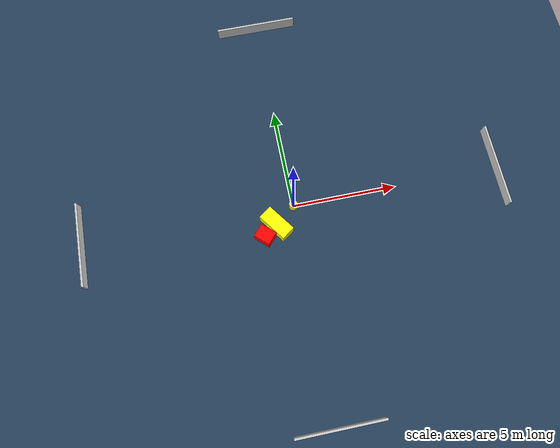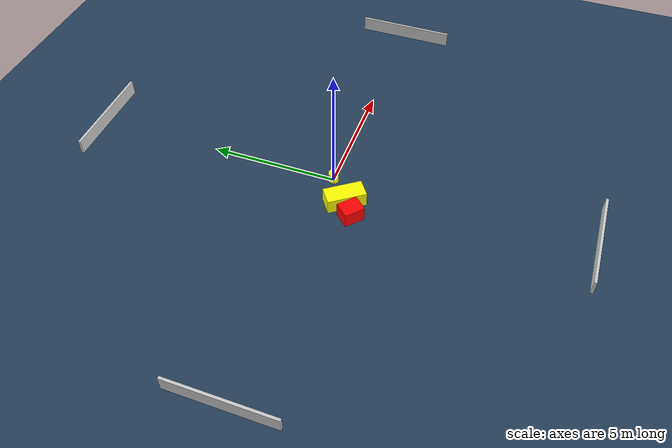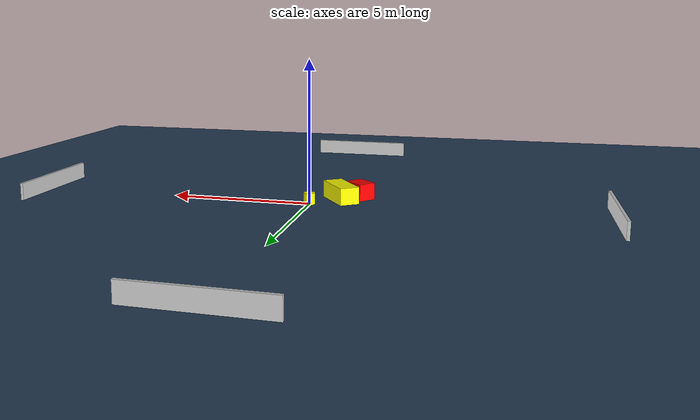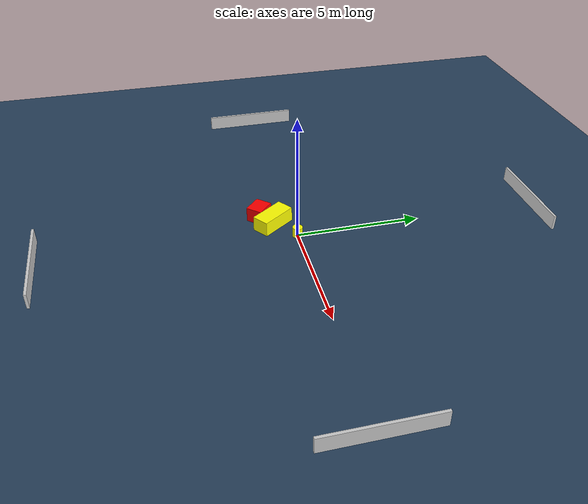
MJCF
<?xml version="1.0" ?>
<mujoco model="generated_environment">
  <option timestep="0.01" integrator="RK4" cone="elliptic"/>
  <default>
    <geom density="1"/>
  </default>
  <asset>
    <texture builtin="gradient" height="3072" name="skybox" rgb1="0.3 0.5 0.7" rgb2="0 0 0" type="skybox" width="512"/>
    <texture builtin="checker" height="300" name="groundplane" rgb1="0.2 0.3 0.4" rgb2="0.1 0.2 0.3" type="2d" width="300"/>
    <material name="groundplane" reflectance="0.2" texrepeat="5 5" texture="groundplane"/>
  </asset>
  <worldbody>
    <light dir="0 0 -1" directional="true" pos="0 0 1.5"/>
    <geom condim="3" friction="0.5 0.005 0.001" material="groundplane" name="floor" pos="0 0 0" size="0 0 0.05" type="plane"/>
    <body name="walls">
      <geom name="wall_1" condim="4" pos="-10.0 0.0 0.3" rgba="0.800000011920929 0.800000011920929 0.800000011920929 1.0" size="0.05 2.0 0.3" type="box"/>
      <geom name="wall_2" condim="4" pos="10.0 0.0 0.3" rgba="0.800000011920929 0.800000011920929 0.800000011920929 1.0" size="0.05 2.0 0.3" type="box"/>
      <geom name="wall_3" condim="4" pos="0.0 -10.0 0.3" rgba="0.800000011920929 0.800000011920929 0.800000011920929 1.0" size="2.0 0.05 0.3" type="box"/>
      <geom name="wall_4" condim="4" pos="0.0 10.0 0.3" rgba="0.800000011920929 0.800000011920929 0.800000011920929 1.0" size="2.0 0.05 0.3" type="box"/>
    </body>
    <body name="robot">
      <joint name="joint_x" type="slide" pos="0 0 0" axis="1 0 0"/>
      <joint name="joint_y" type="slide" pos="0 0 0" axis="0 1 0"/>
      <geom name="robot" type="cylinder" pos="0.0 0.0 0.2" size="0.2 0.2 0.0" mass="5.0" friction="1.0 0.005 0.0001" condim="4" rgba="1.0 1.0 0.0 1.0"/>
    </body>
    <body name="obstacle_1_movable">
      <geom name="obstacle_1_movable" condim="4" pos="-0.9470709274964065 -0.7818644496798797 0.3" euler="0 0 215.90612942798447" friction="0.0 0.005 0.001" rgba="1.0 1.0 0.0 1.0" size="0.3512008480647287 0.7542713708456414 0.3" type="box" mass="0.1"/>
      <joint type="free"/>
    </body>
    <body name="obstacle_2_static">
      <geom name="obstacle_2_static" condim="4" pos="-1.5634203267528555 -1.2291365855619465 0.3" euler="0 0 227.64505726766257" friction="0.0 0.005 0.001" rgba="1.0 0.0 0.0 1.0" size="0.33028036583110154 0.401379448961992 0.3" type="box"/>
    </body>
  </worldbody>
  <actuator>
    <motor name="actuator_x" joint="joint_x" gear="1" ctrlrange="-1 1"/>
    <motor name="actuator_y" joint="joint_y" gear="1" ctrlrange="-1 1"/>
  </actuator>
</mujoco>
